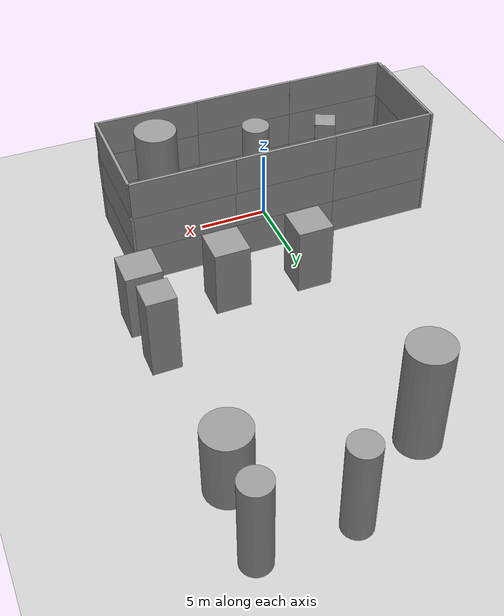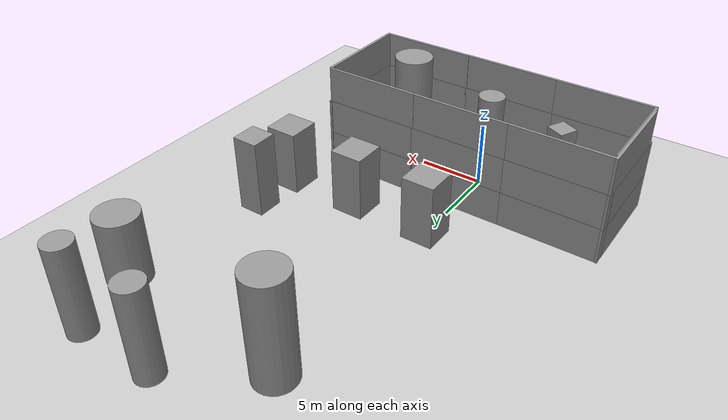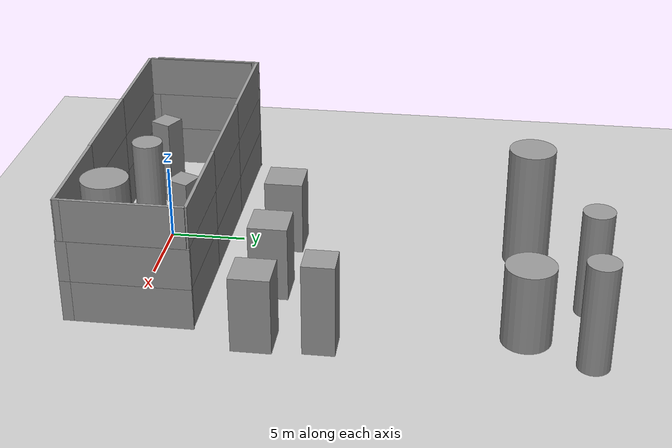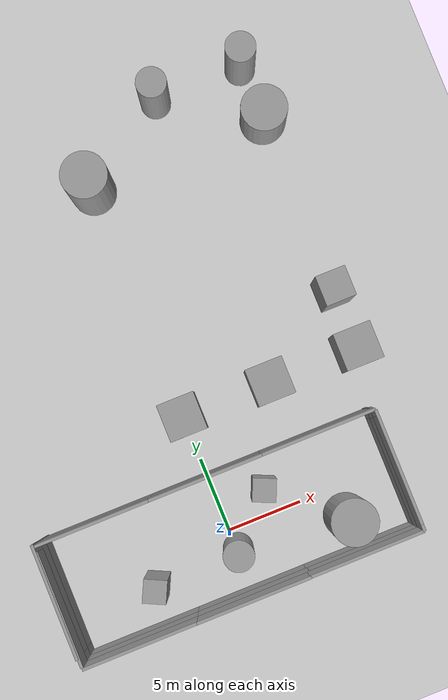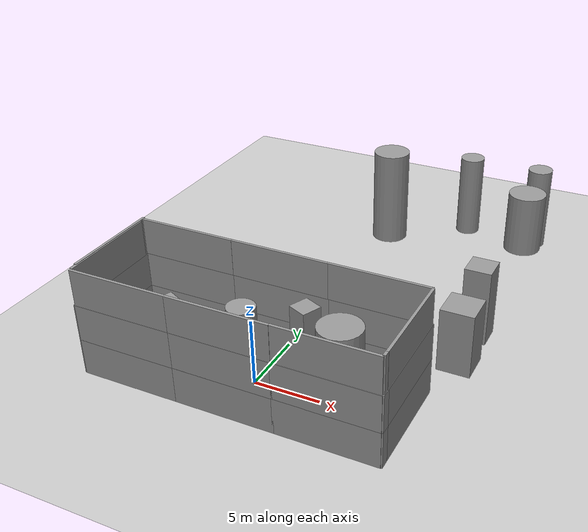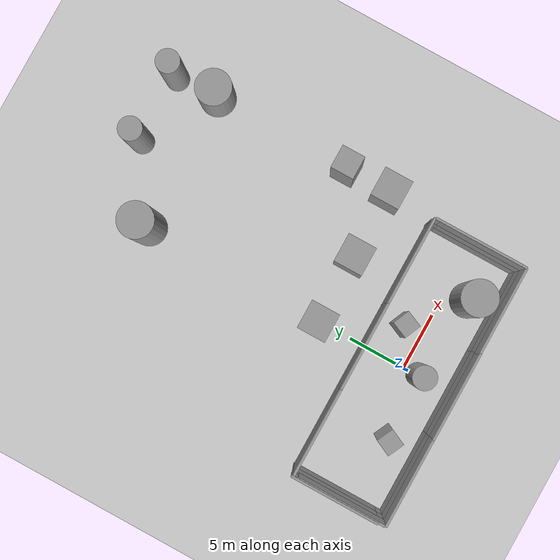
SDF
<sdf version="1.6">
 <world name="default">
  <plugin name="voxblox_ground_truth_plugin" filename="libvoxblox_ground_truth_plugin.so"/>
  <model name="ground_plane">
   <static>1</static>
   <link name="link">
    <collision name="collision">
     <geometry><plane><normal>0 0 1</normal><size>100 100</size></plane></geometry>
     <surface>
      <contact><collide_bitmask>65535</collide_bitmask></contact>
      <friction><ode><mu>100</mu><mu2>50</mu2></ode></friction>
     </surface>
    </collision>
    <visual name="visual">
     <cast_shadows>0</cast_shadows>
     <geometry><plane><normal>0 0 1</normal><size>100 100</size></plane></geometry>
     <material>
      <script><uri>file://media/materials/scripts/gazebo.material</uri><name>Gazebo/Grey</name></script>
     </material>
    </visual>
   </link>
  </model>
  <light name="sun" type="directional">
   <pose>0 0 10 0 -0 0</pose>
   <diffuse>0.8 0.8 0.8 1</diffuse>
   <specular>0.2 0.2 0.2 1</specular>
   <attenuation>
    <range>1000</range>
    <constant>0.9</constant>
    <linear>0.01</linear>
    <quadratic>0.001</quadratic>
   </attenuation>
   <direction>-0.5 0.1 -0.9</direction>
  </light>
  <scene><shadows>0</shadows><ambient>0.4 0.4 0.4 1</ambient><background>0.7 0.7 0.7 1</background></scene>
  <plugin name="gazebo_octomap" filename="librotors_gazebo_octomap_plugin.so"/>
  <plugin name="ros_interface_plugin" filename="librotors_gazebo_ros_interface_plugin.so"/>
  <physics name="default_physics" default="0" type="ode">
   <max_step_size>0.005</max_step_size>
   <real_time_factor>1</real_time_factor>
   <real_time_update_rate>600</real_time_update_rate>
   <ode>
    <solver>
     <type>quick</type>
     <iters>1000</iters>
     <sor>1.3</sor>
     <use_dynamic_moi_rescaling>0</use_dynamic_moi_rescaling>
    </solver>
    <constraints>
     <cfm>0</cfm>
     <erp>0.2</erp>
     <contact_max_correcting_vel>100</contact_max_correcting_vel>
     <contact_surface_layer>0.001</contact_surface_layer>
    </constraints>
   </ode>
  </physics>
  <gravity>0 0 -9.8</gravity>
  <magnetic_field>6e-06 2.3e-05 -4.2e-05</magnetic_field>
  <atmosphere type="adiabatic"/>
  <audio><device>default</device></audio>
  <spherical_coordinates>
   <surface_model>EARTH_WGS84</surface_model>
   <latitude_deg>0</latitude_deg>
   <longitude_deg>0</longitude_deg>
   <elevation>0</elevation>
   <heading_deg>0</heading_deg>
  </spherical_coordinates>
  <model name="grey wall 1">
   <static>1</static>
   <link name="link">
    <pose>0 0 1.4 0 -0 0</pose>
    <collision name="collision"><geometry><box><size>7.5 0.2 2.8</size></box></geometry></collision>
    <visual name="visual">
     <cast_shadows>0</cast_shadows>
     <geometry><box><size>7.5 0.2 2.8</size></box></geometry>
     <material>
      <script>
       <uri>model://grey_wall/materials/scripts</uri>
       <uri>model://grey_wall/materials/textures</uri>
       <name>vrc/grey_wall</name>
      </script>
     </material>
    </visual>
   </link>
   <pose>0.05 4 0 0 -0 0</pose>
  </model>
  <model name="grey wall 2">
   <static>1</static>
   <link name="link">
    <pose>0 0 1.4 0 -0 0</pose>
    <collision name="collision"><geometry><box><size>7.5 0.2 2.8</size></box></geometry></collision>
    <visual name="visual">
     <cast_shadows>0</cast_shadows>
     <geometry><box><size>7.5 0.2 2.8</size></box></geometry>
     <material>
      <script>
       <uri>model://grey_wall/materials/scripts</uri>
       <uri>model://grey_wall/materials/textures</uri>
       <name>vrc/grey_wall</name>
      </script>
     </material>
    </visual>
   </link>
   <pose>0.05 -4 0 0 -0 0</pose>
  </model>
  <model name="grey wall 3">
   <static>1</static>
   <link name="link">
    <pose>0 0 1.4 0 -0 0</pose>
    <collision name="collision"><geometry><box><size>7.5 0.2 2.8</size></box></geometry></collision>
    <visual name="visual">
     <cast_shadows>0</cast_shadows>
     <geometry><box><size>7.5 0.2 2.8</size></box></geometry>
     <material>
      <script>
       <uri>model://grey_wall/materials/scripts</uri>
       <uri>model://grey_wall/materials/textures</uri>
       <name>vrc/grey_wall</name>
      </script>
     </material>
    </visual>
   </link>
   <pose>0.05 4 2.78 0 -0 0</pose>
  </model>
  <model name="grey wall 4">
   <static>1</static>
   <link name="link">
    <pose>0 0 1.4 0 -0 0</pose>
    <collision name="collision"><geometry><box><size>7.5 0.2 2.8</size></box></geometry></collision>
    <visual name="visual">
     <cast_shadows>0</cast_shadows>
     <geometry><box><size>7.5 0.2 2.8</size></box></geometry>
     <material>
      <script>
       <uri>model://grey_wall/materials/scripts</uri>
       <uri>model://grey_wall/materials/textures</uri>
       <name>vrc/grey_wall</name>
      </script>
     </material>
    </visual>
   </link>
   <pose>0.05 -4 2.78 0 -0 0</pose>
  </model>
  <model name="grey wall 5">
   <static>1</static>
   <link name="link">
    <pose>0 0 1.4 0 -0 0</pose>
    <collision name="collision"><geometry><box><size>7.5 0.2 2.8</size></box></geometry></collision>
    <visual name="visual">
     <cast_shadows>0</cast_shadows>
     <geometry><box><size>7.5 0.2 2.8</size></box></geometry>
     <material>
      <script>
       <uri>model://grey_wall/materials/scripts</uri>
       <uri>model://grey_wall/materials/textures</uri>
       <name>vrc/grey_wall</name>
      </script>
     </material>
    </visual>
   </link>
   <pose>7.44 4 0 0 -0 0</pose>
  </model>
  <model name="grey wall 6">
   <static>1</static>
   <link name="link">
    <pose>0 0 1.4 0 -0 0</pose>
    <collision name="collision"><geometry><box><size>7.5 0.2 2.8</size></box></geometry></collision>
    <visual name="visual">
     <cast_shadows>0</cast_shadows>
     <geometry><box><size>7.5 0.2 2.8</size></box></geometry>
     <material>
      <script>
       <uri>model://grey_wall/materials/scripts</uri>
       <uri>model://grey_wall/materials/textures</uri>
       <name>vrc/grey_wall</name>
      </script>
     </material>
    </visual>
   </link>
   <pose>7.44 -4 0 0 -0 0</pose>
  </model>
  <model name="grey wall 7">
   <static>1</static>
   <link name="link">
    <pose>0 0 1.4 0 -0 0</pose>
    <collision name="collision"><geometry><box><size>7.5 0.2 2.8</size></box></geometry></collision>
    <visual name="visual">
     <cast_shadows>0</cast_shadows>
     <geometry><box><size>7.5 0.2 2.8</size></box></geometry>
     <material>
      <script>
       <uri>model://grey_wall/materials/scripts</uri>
       <uri>model://grey_wall/materials/textures</uri>
       <name>vrc/grey_wall</name>
      </script>
     </material>
    </visual>
   </link>
   <pose>7.44 4 2.78 0 -0 0</pose>
  </model>
  <model name="grey wall 8">
   <static>1</static>
   <link name="link">
    <pose>0 0 1.4 0 -0 0</pose>
    <collision name="collision"><geometry><box><size>7.5 0.2 2.8</size></box></geometry></collision>
    <visual name="visual">
     <cast_shadows>0</cast_shadows>
     <geometry><box><size>7.5 0.2 2.8</size></box></geometry>
     <material>
      <script>
       <uri>model://grey_wall/materials/scripts</uri>
       <uri>model://grey_wall/materials/textures</uri>
       <name>vrc/grey_wall</name>
      </script>
     </material>
    </visual>
   </link>
   <pose>7.44 -4 2.78 0 -0 0</pose>
  </model>
  <model name="grey wall 9">
   <static>1</static>
   <link name="link">
    <pose>0 0 1.4 0 -0 0</pose>
    <collision name="collision"><geometry><box><size>7.5 0.2 2.8</size></box></geometry></collision>
    <visual name="visual">
     <cast_shadows>0</cast_shadows>
     <geometry><box><size>7.5 0.2 2.8</size></box></geometry>
     <material>
      <script>
       <uri>model://grey_wall/materials/scripts</uri>
       <uri>model://grey_wall/materials/textures</uri>
       <name>vrc/grey_wall</name>
      </script>
     </material>
    </visual>
   </link>
   <pose>-7.44 4 0 0 -0 0</pose>
  </model>
  <model name="grey wall 10">
   <static>1</static>
   <link name="link">
    <pose>0 0 1.4 0 -0 0</pose>
    <collision name="collision"><geometry><box><size>7.5 0.2 2.8</size></box></geometry></collision>
    <visual name="visual">
     <cast_shadows>0</cast_shadows>
     <geometry><box><size>7.5 0.2 2.8</size></box></geometry>
     <material>
      <script>
       <uri>model://grey_wall/materials/scripts</uri>
       <uri>model://grey_wall/materials/textures</uri>
       <name>vrc/grey_wall</name>
      </script>
     </material>
    </visual>
   </link>
   <pose>-7.44 -4 0 0 -0 0</pose>
  </model>
  <model name="grey wall 11">
   <static>1</static>
   <link name="link">
    <pose>0 0 1.4 0 -0 0</pose>
    <collision name="collision"><geometry><box><size>7.5 0.2 2.8</size></box></geometry></collision>
    <visual name="visual">
     <cast_shadows>0</cast_shadows>
     <geometry><box><size>7.5 0.2 2.8</size></box></geometry>
     <material>
      <script>
       <uri>model://grey_wall/materials/scripts</uri>
       <uri>model://grey_wall/materials/textures</uri>
       <name>vrc/grey_wall</name>
      </script>
     </material>
    </visual>
   </link>
   <pose>-7.44 4 2.78 0 -0 0</pose>
  </model>
  <model name="grey wall 12">
   <static>1</static>
   <link name="link">
    <pose>0 0 1.4 0 -0 0</pose>
    <collision name="collision"><geometry><box><size>7.5 0.2 2.8</size></box></geometry></collision>
    <visual name="visual">
     <cast_shadows>0</cast_shadows>
     <geometry><box><size>7.5 0.2 2.8</size></box></geometry>
     <material>
      <script>
       <uri>model://grey_wall/materials/scripts</uri>
       <uri>model://grey_wall/materials/textures</uri>
       <name>vrc/grey_wall</name>
      </script>
     </material>
    </visual>
   </link>
   <pose>-7.44 -4 2.78 0 -0 0</pose>
  </model>
  <model name="grey wall 13">
   <static>1</static>
   <link name="link">
    <pose>0 0 1.4 0 -0 0</pose>
    <collision name="collision"><geometry><box><size>7.5 0.2 2.8</size></box></geometry></collision>
    <visual name="visual">
     <cast_shadows>0</cast_shadows>
     <geometry><box><size>7.5 0.2 2.8</size></box></geometry>
     <material>
      <script>
       <uri>model://grey_wall/materials/scripts</uri>
       <uri>model://grey_wall/materials/textures</uri>
       <name>vrc/grey_wall</name>
      </script>
     </material>
    </visual>
   </link>
   <pose>11.2 0.39 0 0 0 -1.57</pose>
  </model>
  <model name="grey wall 14">
   <static>1</static>
   <link name="link">
    <pose>0 0 1.4 0 -0 0</pose>
    <collision name="collision"><geometry><box><size>7.5 0.2 2.8</size></box></geometry></collision>
    <visual name="visual">
     <cast_shadows>0</cast_shadows>
     <geometry><box><size>7.5 0.2 2.8</size></box></geometry>
     <material>
      <script>
       <uri>model://grey_wall/materials/scripts</uri>
       <uri>model://grey_wall/materials/textures</uri>
       <name>vrc/grey_wall</name>
      </script>
     </material>
    </visual>
   </link>
   <pose>11.2 -0.314 0 0 0 -1.57</pose>
  </model>
  <model name="grey wall 15">
   <static>1</static>
   <link name="link">
    <pose>0 0 1.4 0 -0 0</pose>
    <collision name="collision"><geometry><box><size>7.5 0.2 2.8</size></box></geometry></collision>
    <visual name="visual">
     <cast_shadows>0</cast_shadows>
     <geometry><box><size>7.5 0.2 2.8</size></box></geometry>
     <material>
      <script>
       <uri>model://grey_wall/materials/scripts</uri>
       <uri>model://grey_wall/materials/textures</uri>
       <name>vrc/grey_wall</name>
      </script>
     </material>
    </visual>
   </link>
   <pose>-11.2 0.39 0 0 0 -1.57</pose>
  </model>
  <model name="grey wall 16">
   <static>1</static>
   <link name="link">
    <pose>0 0 1.4 0 -0 0</pose>
    <collision name="collision"><geometry><box><size>7.5 0.2 2.8</size></box></geometry></collision>
    <visual name="visual">
     <cast_shadows>0</cast_shadows>
     <geometry><box><size>7.5 0.2 2.8</size></box></geometry>
     <material>
      <script>
       <uri>model://grey_wall/materials/scripts</uri>
       <uri>model://grey_wall/materials/textures</uri>
       <name>vrc/grey_wall</name>
      </script>
     </material>
    </visual>
   </link>
   <pose>-11.2 -0.314 0 0 0 -1.57</pose>
  </model>
  <model name="grey wall 17">
   <static>1</static>
   <link name="link">
    <pose>0 0 1.4 0 -0 0</pose>
    <collision name="collision"><geometry><box><size>7.5 0.2 2.8</size></box></geometry></collision>
    <visual name="visual">
     <cast_shadows>0</cast_shadows>
     <geometry><box><size>7.5 0.2 2.8</size></box></geometry>
     <material>
      <script>
       <uri>model://grey_wall/materials/scripts</uri>
       <uri>model://grey_wall/materials/textures</uri>
       <name>vrc/grey_wall</name>
      </script>
     </material>
    </visual>
   </link>
   <pose>11.2 0.39 2.78 0 0 -1.57</pose>
  </model>
  <model name="grey wall 18">
   <static>1</static>
   <link name="link">
    <pose>0 0 1.4 0 -0 0</pose>
    <collision name="collision"><geometry><box><size>7.5 0.2 2.8</size></box></geometry></collision>
    <visual name="visual">
     <cast_shadows>0</cast_shadows>
     <geometry><box><size>7.5 0.2 2.8</size></box></geometry>
     <material>
      <script>
       <uri>model://grey_wall/materials/scripts</uri>
       <uri>model://grey_wall/materials/textures</uri>
       <name>vrc/grey_wall</name>
      </script>
     </material>
    </visual>
   </link>
   <pose>11.2 -0.314 2.78 0 0 -1.57</pose>
  </model>
  <model name="grey wall 19">
   <static>1</static>
   <link name="link">
    <pose>0 0 1.4 0 -0 0</pose>
    <collision name="collision"><geometry><box><size>7.5 0.2 2.8</size></box></geometry></collision>
    <visual name="visual">
     <cast_shadows>0</cast_shadows>
     <geometry><box><size>7.5 0.2 2.8</size></box></geometry>
     <material>
      <script>
       <uri>model://grey_wall/materials/scripts</uri>
       <uri>model://grey_wall/materials/textures</uri>
       <name>vrc/grey_wall</name>
      </script>
     </material>
    </visual>
   </link>
   <pose>-11.2 0.39 2.78 0 0 -1.57</pose>
  </model>
  <model name="grey wall 20">
   <static>1</static>
   <link name="link">
    <pose>0 0 1.4 0 -0 0</pose>
    <collision name="collision"><geometry><box><size>7.5 0.2 2.8</size></box></geometry></collision>
    <visual name="visual">
     <cast_shadows>0</cast_shadows>
     <geometry><box><size>7.5 0.2 2.8</size></box></geometry>
     <material>
      <script>
       <uri>model://grey_wall/materials/scripts</uri>
       <uri>model://grey_wall/materials/textures</uri>
       <name>vrc/grey_wall</name>
      </script>
     </material>
    </visual>
   </link>
   <pose>-11.2 -0.314 2.78 0 0 -1.57</pose>
  </model>
  <model name="large_box_0">
   <static>1</static>
   <pose>0 8 2.5 0 -0 0</pose>
   <link name="link">
    <inertial>
     <mass>1</mass>
     <inertia><ixx>0.1</ixx><ixy>0</ixy><ixz>0</ixz><iyy>0.1</iyy><iyz>0</iyz><izz>0.1</izz></inertia>
    </inertial>
    <collision name="collision"><geometry><box><size>2.5 2.5 5</size></box></geometry></collision>
    <visual name="visual">
     <geometry><box><size>2.5 2.5 5</size></box></geometry>
     <material>
      <script><name>Gazebo/Grey</name><uri>file://media/materials/scripts/gazebo.material</uri></script>
     </material>
    </visual>
   </link>
  </model>
  <model name="large_box_1">
   <static>1</static>
   <pose>6 8 2.5 0 -0 0</pose>
   <link name="link">
    <inertial>
     <mass>1</mass>
     <inertia><ixx>0.1</ixx><ixy>0</ixy><ixz>0</ixz><iyy>0.1</iyy><iyz>0</iyz><izz>0.1</izz></inertia>
    </inertial>
    <collision name="collision"><geometry><box><size>2.5 2.5 5</size></box></geometry></collision>
    <visual name="visual">
     <geometry><box><size>2.5 2.5 5</size></box></geometry>
     <material>
      <script><name>Gazebo/Grey</name><uri>file://media/materials/scripts/gazebo.material</uri></script>
     </material>
    </visual>
   </link>
  </model>
  <model name="large_box_2">
   <static>1</static>
   <pose>12 8 2.5 0 -0 0</pose>
   <link name="link">
    <inertial>
     <mass>1</mass>
     <inertia><ixx>0.1</ixx><ixy>0</ixy><ixz>0</ixz><iyy>0.1</iyy><iyz>0</iyz><izz>0.1</izz></inertia>
    </inertial>
    <collision name="collision"><geometry><box><size>2.5 2.5 5</size></box></geometry></collision>
    <visual name="visual">
     <geometry><box><size>2.5 2.5 5</size></box></geometry>
     <material>
      <script><name>Gazebo/Grey</name><uri>file://media/materials/scripts/gazebo.material</uri></script>
     </material>
    </visual>
   </link>
  </model>
  <model name="medium_box_0">
   <static>1</static>
   <pose>3.09567 1.83807 3 0 -0 2.72694</pose>
   <link name="link">
    <inertial>
     <mass>1</mass>
     <inertia><ixx>0.1</ixx><ixy>0</ixy><ixz>0</ixz><iyy>0.1</iyy><iyz>0</iyz><izz>0.1</izz></inertia>
    </inertial>
    <collision name="collision"><geometry><box><size>1.5 1.5 6</size></box></geometry></collision>
    <visual name="visual">
     <geometry><box><size>1.5 1.5 6</size></box></geometry>
     <material>
      <script><name>Gazebo/Grey</name><uri>file://media/materials/scripts/gazebo.material</uri></script>
     </material>
    </visual>
   </link>
  </model>
  <model name="medium_box_1">
   <static>1</static>
   <pose>-5.55521 -1.44665 3 0 -0 2.69737</pose>
   <link name="link">
    <inertial>
     <mass>1</mass>
     <inertia><ixx>0.1</ixx><ixy>0</ixy><ixz>0</ixz><iyy>0.1</iyy><iyz>0</iyz><izz>0.1</izz></inertia>
    </inertial>
    <collision name="collision"><geometry><box><size>1.5 1.5 6</size></box></geometry></collision>
    <visual name="visual">
     <geometry><box><size>1.5 1.5 6</size></box></geometry>
     <material>
      <script><name>Gazebo/Grey</name><uri>file://media/materials/scripts/gazebo.material</uri></script>
     </material>
    </visual>
   </link>
  </model>
  <model name="medium_box_2">
   <static>1</static>
   <pose>12 12 3 0 -0 0</pose>
   <link name="link">
    <inertial>
     <mass>1</mass>
     <inertia><ixx>0.1</ixx><ixy>0</ixy><ixz>0</ixz><iyy>0.1</iyy><iyz>0</iyz><izz>0.1</izz></inertia>
    </inertial>
    <collision name="collision"><geometry><box><size>2 2 6</size></box></geometry></collision>
    <visual name="visual">
     <geometry><box><size>2 2 6</size></box></geometry>
     <material>
      <script><name>Gazebo/Grey</name><uri>file://media/materials/scripts/gazebo.material</uri></script>
     </material>
    </visual>
   </link>
  </model>
  <model name="large_cylinder_0">
   <static>1</static>
   <pose>0 24 4 0 -0 0</pose>
   <link name="link">
    <inertial>
     <mass>1</mass>
     <inertia><ixx>0.1</ixx><ixy>0</ixy><ixz>0</ixz><iyy>0.1</iyy><iyz>0</iyz><izz>0.1</izz></inertia>
    </inertial>
    <collision name="collision">
     <geometry><cylinder><radius>1.5</radius><length>8</length></cylinder></geometry>
    </collision>
    <visual name="visual">
     <geometry><cylinder><radius>1.5</radius><length>8</length></cylinder></geometry>
     <material>
      <script><name>Gazebo/Grey</name><uri>file://media/materials/scripts/gazebo.material</uri></script>
     </material>
    </visual>
   </link>
  </model>
  <model name="large_cylinder_1">
   <static>1</static>
   <pose>7.47886 -1.94338 4 0 -0 2.57798</pose>
   <link name="link">
    <inertial>
     <mass>1</mass>
     <inertia><ixx>0.1</ixx><ixy>0</ixy><ixz>0</ixz><iyy>0.1</iyy><iyz>0</iyz><izz>0.1</izz></inertia>
    </inertial>
    <collision name="collision">
     <geometry><cylinder><radius>1.5</radius><length>8</length></cylinder></geometry>
    </collision>
    <visual name="visual">
     <geometry><cylinder><radius>1.5</radius><length>8</length></cylinder></geometry>
     <material>
      <script><name>Gazebo/Grey</name><uri>file://media/materials/scripts/gazebo.material</uri></script>
     </material>
    </visual>
   </link>
  </model>
  <model name="large_cylinder_2">
   <static>1</static>
   <pose>12 24 4 0 -0 0</pose>
   <link name="link">
    <inertial>
     <mass>1</mass>
     <inertia><ixx>0.1</ixx><ixy>0</ixy><ixz>0</ixz><iyy>0.1</iyy><iyz>0</iyz><izz>0.1</izz></inertia>
    </inertial>
    <collision name="collision">
     <geometry><cylinder><radius>1.5</radius><length>5</length></cylinder></geometry>
    </collision>
    <visual name="visual">
     <geometry><cylinder><radius>1.5</radius><length>5</length></cylinder></geometry>
     <material>
      <script><name>Gazebo/Grey</name><uri>file://media/materials/scripts/gazebo.material</uri></script>
     </material>
    </visual>
   </link>
  </model>
  <model name="medium_cylinder_0">
   <static>1</static>
   <pose>0.125928 -1.28517 3.5 0 -0 1.57871</pose>
   <link name="link">
    <inertial>
     <mass>1</mass>
     <inertia><ixx>0.1</ixx><ixy>0</ixy><ixz>0</ixz><iyy>0.1</iyy><iyz>0</iyz><izz>0.1</izz></inertia>
    </inertial>
    <collision name="collision">
     <geometry><cylinder><radius>1</radius><length>8</length></cylinder></geometry>
    </collision>
    <visual name="visual">
     <geometry><cylinder><radius>1</radius><length>7</length></cylinder></geometry>
     <material>
      <script><name>Gazebo/Grey</name><uri>file://media/materials/scripts/gazebo.material</uri></script>
     </material>
    </visual>
   </link>
  </model>
  <model name="medium_cylinder_1">
   <static>1</static>
   <pose>6 28 3.5 0 -0 0</pose>
   <link name="link">
    <inertial>
     <mass>1</mass>
     <inertia><ixx>0.1</ixx><ixy>0</ixy><ixz>0</ixz><iyy>0.1</iyy><iyz>0</iyz><izz>0.1</izz></inertia>
    </inertial>
    <collision name="collision">
     <geometry><cylinder><radius>1</radius><length>7</length></cylinder></geometry>
    </collision>
    <visual name="visual">
     <geometry><cylinder><radius>1</radius><length>7</length></cylinder></geometry>
     <material>
      <script><name>Gazebo/Grey</name><uri>file://media/materials/scripts/gazebo.material</uri></script>
     </material>
    </visual>
   </link>
  </model>
  <model name="medium_cylinder_2">
   <static>1</static>
   <pose>12 28 3.5 0 -0 0</pose>
   <link name="link">
    <inertial>
     <mass>1</mass>
     <inertia><ixx>0.1</ixx><ixy>0</ixy><ixz>0</ixz><iyy>0.1</iyy><iyz>0</iyz><izz>0.1</izz></inertia>
    </inertial>
    <collision name="collision">
     <geometry><cylinder><radius>1</radius><length>3</length></cylinder></geometry>
    </collision>
    <visual name="visual">
     <geometry><cylinder><radius>1</radius><length>7</length></cylinder></geometry>
     <material>
      <script><name>Gazebo/Grey</name><uri>file://media/materials/scripts/gazebo.material</uri></script>
     </material>
    </visual>
   </link>
  </model>
  <model name="grey wall 3_clone">
   <static>1</static>
   <link name="link">
    <pose>0 0 1.4 0 -0 0</pose>
    <collision name="collision"><geometry><box><size>7.5 0.2 2.8</size></box></geometry></collision>
    <visual name="visual">
     <cast_shadows>0</cast_shadows>
     <geometry><box><size>7.5 0.2 2.8</size></box></geometry>
     <material>
      <script>
       <uri>model://grey_wall/materials/scripts</uri>
       <uri>model://grey_wall/materials/textures</uri>
       <name>vrc/grey_wall</name>
      </script>
     </material>
    </visual>
   </link>
   <pose>0.003106 3.98858 5.5531 0 -0 0</pose>
  </model>
  <model name="grey wall 3_clone_clone">
   <static>1</static>
   <link name="link">
    <pose>0 0 1.4 0 -0 0</pose>
    <collision name="collision"><geometry><box><size>7.5 0.2 2.8</size></box></geometry></collision>
    <visual name="visual">
     <cast_shadows>0</cast_shadows>
     <geometry><box><size>7.5 0.2 2.8</size></box></geometry>
     <material>
      <script>
       <uri>model://grey_wall/materials/scripts</uri>
       <uri>model://grey_wall/materials/textures</uri>
       <name>vrc/grey_wall</name>
      </script>
     </material>
    </visual>
   </link>
   <pose>7.43672 3.99551 5.5531 0 -0 0</pose>
  </model>
  <model name="grey wall 18_clone">
   <static>1</static>
   <link name="link">
    <pose>0 0 1.4 0 -0 0</pose>
    <collision name="collision"><geometry><box><size>7.5 0.2 2.8</size></box></geometry></collision>
    <visual name="visual">
     <cast_shadows>0</cast_shadows>
     <geometry><box><size>7.5 0.2 2.8</size></box></geometry>
     <material>
      <script>
       <uri>model://grey_wall/materials/scripts</uri>
       <uri>model://grey_wall/materials/textures</uri>
       <name>vrc/grey_wall</name>
      </script>
     </material>
    </visual>
   </link>
   <pose>11.1814 0.216817 5.5683 0 0 -1.57</pose>
  </model>
  <model name="grey wall 8_clone">
   <static>1</static>
   <link name="link">
    <pose>0 0 1.4 0 -0 0</pose>
    <collision name="collision"><geometry><box><size>7.5 0.2 2.8</size></box></geometry></collision>
    <visual name="visual">
     <cast_shadows>0</cast_shadows>
     <geometry><box><size>7.5 0.2 2.8</size></box></geometry>
     <material>
      <script>
       <uri>model://grey_wall/materials/scripts</uri>
       <uri>model://grey_wall/materials/textures</uri>
       <name>vrc/grey_wall</name>
      </script>
     </material>
    </visual>
   </link>
   <pose>7.41958 -3.95582 5.51114 0 -0 0</pose>
  </model>
  <model name="grey wall 4_clone">
   <static>1</static>
   <link name="link">
    <pose>0 0 1.4 0 -0 0</pose>
    <collision name="collision"><geometry><box><size>7.5 0.2 2.8</size></box></geometry></collision>
    <visual name="visual">
     <cast_shadows>0</cast_shadows>
     <geometry><box><size>7.5 0.2 2.8</size></box></geometry>
     <material>
      <script>
       <uri>model://grey_wall/materials/scripts</uri>
       <uri>model://grey_wall/materials/textures</uri>
       <name>vrc/grey_wall</name>
      </script>
     </material>
    </visual>
   </link>
   <pose>0.024303 -3.98156 5.51127 0 -0 0</pose>
  </model>
  <model name="grey wall 4_clone_clone">
   <static>1</static>
   <link name="link">
    <pose>0 0 1.4 0 -0 0</pose>
    <collision name="collision"><geometry><box><size>7.5 0.2 2.8</size></box></geometry></collision>
    <visual name="visual">
     <cast_shadows>0</cast_shadows>
     <geometry><box><size>7.5 0.2 2.8</size></box></geometry>
     <material>
      <script>
       <uri>model://grey_wall/materials/scripts</uri>
       <uri>model://grey_wall/materials/textures</uri>
       <name>vrc/grey_wall</name>
      </script>
     </material>
    </visual>
   </link>
   <pose>-7.41942 -3.972 5.5094 0 -0 0</pose>
  </model>
  <model name="grey wall 19_clone">
   <static>1</static>
   <link name="link">
    <pose>0 0 1.4 0 -0 0</pose>
    <collision name="collision"><geometry><box><size>7.5 0.2 2.8</size></box></geometry></collision>
    <visual name="visual">
     <cast_shadows>0</cast_shadows>
     <geometry><box><size>7.5 0.2 2.8</size></box></geometry>
     <material>
      <script>
       <uri>model://grey_wall/materials/scripts</uri>
       <uri>model://grey_wall/materials/textures</uri>
       <name>vrc/grey_wall</name>
      </script>
     </material>
    </visual>
   </link>
   <pose>-11.1378 -0.117973 5.54172 0 0 -1.57</pose>
  </model>
  <model name="grey wall 3_clone_clone_0">
   <static>1</static>
   <link name="link">
    <pose>0 0 1.4 0 -0 0</pose>
    <collision name="collision"><geometry><box><size>7.5 0.2 2.8</size></box></geometry></collision>
    <visual name="visual">
     <cast_shadows>0</cast_shadows>
     <geometry><box><size>7.5 0.2 2.8</size></box></geometry>
     <material>
      <script>
       <uri>model://grey_wall/materials/scripts</uri>
       <uri>model://grey_wall/materials/textures</uri>
       <name>vrc/grey_wall</name>
      </script>
     </material>
    </visual>
   </link>
   <pose>-7.44915 3.98372 5.5531 0 -0 0</pose>
  </model>
  <model name="grey wall 19_clone_clone">
   <static>1</static>
   <link name="link">
    <pose>0 0 1.4 0 -0 0</pose>
    <collision name="collision"><geometry><box><size>7.5 0.2 2.8</size></box></geometry></collision>
    <visual name="visual">
     <cast_shadows>0</cast_shadows>
     <geometry><box><size>7.5 0.2 2.8</size></box></geometry>
     <material>
      <script>
       <uri>model://grey_wall/materials/scripts</uri>
       <uri>model://grey_wall/materials/textures</uri>
       <name>vrc/grey_wall</name>
      </script>
     </material>
    </visual>
   </link>
   <pose>-11.2319 0.402239 5.57989 0 0 -1.57</pose>
  </model>
  <model name="grey wall 18_clone_clone">
   <static>1</static>
   <link name="link">
    <pose>0 0 1.4 0 -0 0</pose>
    <collision name="collision"><geometry><box><size>7.5 0.2 2.8</size></box></geometry></collision>
    <visual name="visual">
     <cast_shadows>0</cast_shadows>
     <geometry><box><size>7.5 0.2 2.8</size></box></geometry>
     <material>
      <script>
       <uri>model://grey_wall/materials/scripts</uri>
       <uri>model://grey_wall/materials/textures</uri>
       <name>vrc/grey_wall</name>
      </script>
     </material>
    </visual>
   </link>
   <pose>11.1718 -0.203309 5.56829 0 0 -1.57</pose>
  </model>
 </world>
</sdf>
